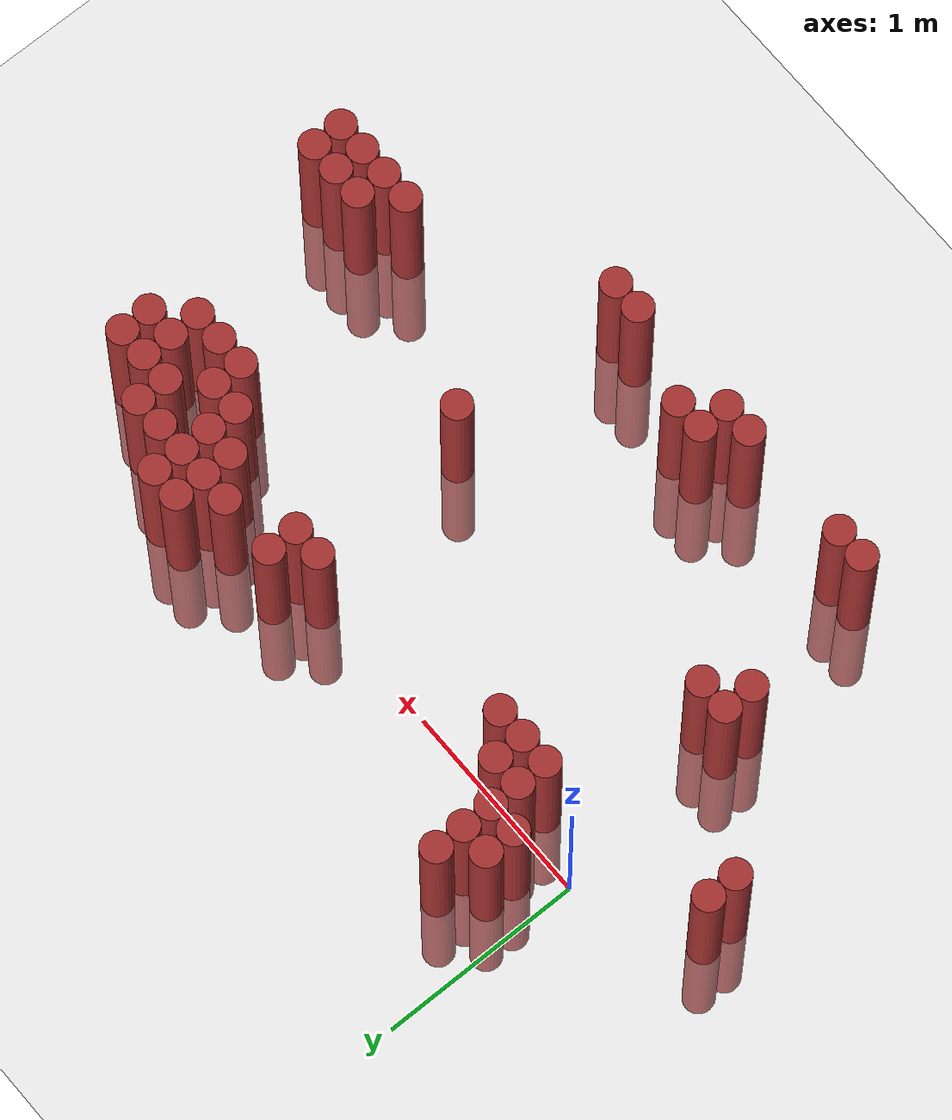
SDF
<sdf version="1.6">
 <world name="default">
  <model name="ground_plane">
   <static>1</static>
   <link name="link">
    <collision name="collision">
     <geometry><plane><normal>0 0 1</normal><size>100 100</size></plane></geometry>
     <surface><friction><ode><mu>100</mu><mu2>50</mu2></ode></friction></surface>
    </collision>
    <visual name="visual">
     <cast_shadows>0</cast_shadows>
     <geometry><plane><normal>0 0 1</normal><size>100 100</size></plane></geometry>
     <material>
      <script><uri>file://media/materials/scripts/gazebo.material</uri><name>Gazebo/Grey</name></script>
     </material>
    </visual>
   </link>
  </model>
  <model name="unit_cylinder_369">
   <static>1</static>
   <pose>-0.575000 -0.425000 0.000000 0.000000 0.000000 0.000000</pose>
   <link name="link">
    <inertial>
     <mass>1</mass>
     <inertia><ixx>0.145833</ixx><ixy>0</ixy><ixz>0</ixz><iyy>0.145833</iyy><iyz>0</iyz><izz>0.125</izz></inertia>
    </inertial>
    <collision name="collision">
     <geometry><cylinder><radius>0.075000</radius><length>1.5</length></cylinder></geometry>
    </collision>
    <visual name="visual">
     <geometry><cylinder><radius>0.075000</radius><length>1.5</length></cylinder></geometry>
     <material>
      <ambient>0.648000 0.192000 0.192000 1</ambient>
      <diffuse>0.648000 0.192000 0.192000 1</diffuse>
     </material>
     <material>
      <script><name>Gazebo/Grey</name><uri>file://media/materials/scripts/gazebo.material</uri></script>
     </material>
    </visual>
   </link>
  </model>
  <model name="unit_cylinder_370">
   <static>1</static>
   <pose>-0.575000 -0.275000 0.000000 0.000000 0.000000 0.000000</pose>
   <link name="link">
    <inertial>
     <mass>1</mass>
     <inertia><ixx>0.145833</ixx><ixy>0</ixy><ixz>0</ixz><iyy>0.145833</iyy><iyz>0</iyz><izz>0.125</izz></inertia>
    </inertial>
    <collision name="collision">
     <geometry><cylinder><radius>0.075000</radius><length>1.5</length></cylinder></geometry>
    </collision>
    <visual name="visual">
     <geometry><cylinder><radius>0.075000</radius><length>1.5</length></cylinder></geometry>
     <material>
      <ambient>0.648000 0.192000 0.192000 1</ambient>
      <diffuse>0.648000 0.192000 0.192000 1</diffuse>
     </material>
     <material>
      <script><name>Gazebo/Grey</name><uri>file://media/materials/scripts/gazebo.material</uri></script>
     </material>
    </visual>
   </link>
  </model>
  <model name="unit_cylinder_371">
   <static>1</static>
   <pose>0.025000 -1.025000 0.000000 0.000000 0.000000 0.000000</pose>
   <link name="link">
    <inertial>
     <mass>1</mass>
     <inertia><ixx>0.145833</ixx><ixy>0</ixy><ixz>0</ixz><iyy>0.145833</iyy><iyz>0</iyz><izz>0.125</izz></inertia>
    </inertial>
    <collision name="collision">
     <geometry><cylinder><radius>0.075000</radius><length>1.5</length></cylinder></geometry>
    </collision>
    <visual name="visual">
     <geometry><cylinder><radius>0.075000</radius><length>1.5</length></cylinder></geometry>
     <material>
      <ambient>0.648000 0.192000 0.192000 1</ambient>
      <diffuse>0.648000 0.192000 0.192000 1</diffuse>
     </material>
     <material>
      <script><name>Gazebo/Grey</name><uri>file://media/materials/scripts/gazebo.material</uri></script>
     </material>
    </visual>
   </link>
  </model>
  <model name="unit_cylinder_372">
   <static>1</static>
   <pose>0.025000 -0.875000 0.000000 0.000000 0.000000 0.000000</pose>
   <link name="link">
    <inertial>
     <mass>1</mass>
     <inertia><ixx>0.145833</ixx><ixy>0</ixy><ixz>0</ixz><iyy>0.145833</iyy><iyz>0</iyz><izz>0.125</izz></inertia>
    </inertial>
    <collision name="collision">
     <geometry><cylinder><radius>0.075000</radius><length>1.5</length></cylinder></geometry>
    </collision>
    <visual name="visual">
     <geometry><cylinder><radius>0.075000</radius><length>1.5</length></cylinder></geometry>
     <material>
      <ambient>0.648000 0.192000 0.192000 1</ambient>
      <diffuse>0.648000 0.192000 0.192000 1</diffuse>
     </material>
     <material>
      <script><name>Gazebo/Grey</name><uri>file://media/materials/scripts/gazebo.material</uri></script>
     </material>
    </visual>
   </link>
  </model>
  <model name="unit_cylinder_374">
   <static>1</static>
   <pose>0.175000 -1.775000 0.000000 0.000000 0.000000 0.000000</pose>
   <link name="link">
    <inertial>
     <mass>1</mass>
     <inertia><ixx>0.145833</ixx><ixy>0</ixy><ixz>0</ixz><iyy>0.145833</iyy><iyz>0</iyz><izz>0.125</izz></inertia>
    </inertial>
    <collision name="collision">
     <geometry><cylinder><radius>0.075000</radius><length>1.5</length></cylinder></geometry>
    </collision>
    <visual name="visual">
     <geometry><cylinder><radius>0.075000</radius><length>1.5</length></cylinder></geometry>
     <material>
      <ambient>0.648000 0.192000 0.192000 1</ambient>
      <diffuse>0.648000 0.192000 0.192000 1</diffuse>
     </material>
     <material>
      <script><name>Gazebo/Grey</name><uri>file://media/materials/scripts/gazebo.material</uri></script>
     </material>
    </visual>
   </link>
  </model>
  <model name="unit_cylinder_375">
   <static>1</static>
   <pose>0.175000 -0.875000 0.000000 0.000000 0.000000 0.000000</pose>
   <link name="link">
    <inertial>
     <mass>1</mass>
     <inertia><ixx>0.145833</ixx><ixy>0</ixy><ixz>0</ixz><iyy>0.145833</iyy><iyz>0</iyz><izz>0.125</izz></inertia>
    </inertial>
    <collision name="collision">
     <geometry><cylinder><radius>0.075000</radius><length>1.5</length></cylinder></geometry>
    </collision>
    <visual name="visual">
     <geometry><cylinder><radius>0.075000</radius><length>1.5</length></cylinder></geometry>
     <material>
      <ambient>0.648000 0.192000 0.192000 1</ambient>
      <diffuse>0.648000 0.192000 0.192000 1</diffuse>
     </material>
     <material>
      <script><name>Gazebo/Grey</name><uri>file://media/materials/scripts/gazebo.material</uri></script>
     </material>
    </visual>
   </link>
  </model>
  <model name="unit_cylinder_376">
   <static>1</static>
   <pose>0.175000 0.175000 0.000000 0.000000 0.000000 0.000000</pose>
   <link name="link">
    <inertial>
     <mass>1</mass>
     <inertia><ixx>0.145833</ixx><ixy>0</ixy><ixz>0</ixz><iyy>0.145833</iyy><iyz>0</iyz><izz>0.125</izz></inertia>
    </inertial>
    <collision name="collision">
     <geometry><cylinder><radius>0.075000</radius><length>1.5</length></cylinder></geometry>
    </collision>
    <visual name="visual">
     <geometry><cylinder><radius>0.075000</radius><length>1.5</length></cylinder></geometry>
     <material>
      <ambient>0.648000 0.192000 0.192000 1</ambient>
      <diffuse>0.648000 0.192000 0.192000 1</diffuse>
     </material>
     <material>
      <script><name>Gazebo/Grey</name><uri>file://media/materials/scripts/gazebo.material</uri></script>
     </material>
    </visual>
   </link>
  </model>
  <model name="unit_cylinder_377">
   <static>1</static>
   <pose>0.175000 0.325000 0.000000 0.000000 0.000000 0.000000</pose>
   <link name="link">
    <inertial>
     <mass>1</mass>
     <inertia><ixx>0.145833</ixx><ixy>0</ixy><ixz>0</ixz><iyy>0.145833</iyy><iyz>0</iyz><izz>0.125</izz></inertia>
    </inertial>
    <collision name="collision">
     <geometry><cylinder><radius>0.075000</radius><length>1.5</length></cylinder></geometry>
    </collision>
    <visual name="visual">
     <geometry><cylinder><radius>0.075000</radius><length>1.5</length></cylinder></geometry>
     <material>
      <ambient>0.648000 0.192000 0.192000 1</ambient>
      <diffuse>0.648000 0.192000 0.192000 1</diffuse>
     </material>
     <material>
      <script><name>Gazebo/Grey</name><uri>file://media/materials/scripts/gazebo.material</uri></script>
     </material>
    </visual>
   </link>
  </model>
  <model name="unit_cylinder_380">
   <static>1</static>
   <pose>0.325000 -1.775000 0.000000 0.000000 0.000000 0.000000</pose>
   <link name="link">
    <inertial>
     <mass>1</mass>
     <inertia><ixx>0.145833</ixx><ixy>0</ixy><ixz>0</ixz><iyy>0.145833</iyy><iyz>0</iyz><izz>0.125</izz></inertia>
    </inertial>
    <collision name="collision">
     <geometry><cylinder><radius>0.075000</radius><length>1.5</length></cylinder></geometry>
    </collision>
    <visual name="visual">
     <geometry><cylinder><radius>0.075000</radius><length>1.5</length></cylinder></geometry>
     <material>
      <ambient>0.648000 0.192000 0.192000 1</ambient>
      <diffuse>0.648000 0.192000 0.192000 1</diffuse>
     </material>
     <material>
      <script><name>Gazebo/Grey</name><uri>file://media/materials/scripts/gazebo.material</uri></script>
     </material>
    </visual>
   </link>
  </model>
  <model name="unit_cylinder_381">
   <static>1</static>
   <pose>0.325000 -0.125000 0.000000 0.000000 0.000000 0.000000</pose>
   <link name="link">
    <inertial>
     <mass>1</mass>
     <inertia><ixx>0.145833</ixx><ixy>0</ixy><ixz>0</ixz><iyy>0.145833</iyy><iyz>0</iyz><izz>0.125</izz></inertia>
    </inertial>
    <collision name="collision">
     <geometry><cylinder><radius>0.075000</radius><length>1.5</length></cylinder></geometry>
    </collision>
    <visual name="visual">
     <geometry><cylinder><radius>0.075000</radius><length>1.5</length></cylinder></geometry>
     <material>
      <ambient>0.648000 0.192000 0.192000 1</ambient>
      <diffuse>0.648000 0.192000 0.192000 1</diffuse>
     </material>
     <material>
      <script><name>Gazebo/Grey</name><uri>file://media/materials/scripts/gazebo.material</uri></script>
     </material>
    </visual>
   </link>
  </model>
  <model name="unit_cylinder_382">
   <static>1</static>
   <pose>0.325000 0.025000 0.000000 0.000000 0.000000 0.000000</pose>
   <link name="link">
    <inertial>
     <mass>1</mass>
     <inertia><ixx>0.145833</ixx><ixy>0</ixy><ixz>0</ixz><iyy>0.145833</iyy><iyz>0</iyz><izz>0.125</izz></inertia>
    </inertial>
    <collision name="collision">
     <geometry><cylinder><radius>0.075000</radius><length>1.5</length></cylinder></geometry>
    </collision>
    <visual name="visual">
     <geometry><cylinder><radius>0.075000</radius><length>1.5</length></cylinder></geometry>
     <material>
      <ambient>0.648000 0.192000 0.192000 1</ambient>
      <diffuse>0.648000 0.192000 0.192000 1</diffuse>
     </material>
     <material>
      <script><name>Gazebo/Grey</name><uri>file://media/materials/scripts/gazebo.material</uri></script>
     </material>
    </visual>
   </link>
  </model>
  <model name="unit_cylinder_383">
   <static>1</static>
   <pose>0.325000 0.175000 0.000000 0.000000 0.000000 0.000000</pose>
   <link name="link">
    <inertial>
     <mass>1</mass>
     <inertia><ixx>0.145833</ixx><ixy>0</ixy><ixz>0</ixz><iyy>0.145833</iyy><iyz>0</iyz><izz>0.125</izz></inertia>
    </inertial>
    <collision name="collision">
     <geometry><cylinder><radius>0.075000</radius><length>1.5</length></cylinder></geometry>
    </collision>
    <visual name="visual">
     <geometry><cylinder><radius>0.075000</radius><length>1.5</length></cylinder></geometry>
     <material>
      <ambient>0.648000 0.192000 0.192000 1</ambient>
      <diffuse>0.648000 0.192000 0.192000 1</diffuse>
     </material>
     <material>
      <script><name>Gazebo/Grey</name><uri>file://media/materials/scripts/gazebo.material</uri></script>
     </material>
    </visual>
   </link>
  </model>
  <model name="unit_cylinder_384">
   <static>1</static>
   <pose>0.325000 0.325000 0.000000 0.000000 0.000000 0.000000</pose>
   <link name="link">
    <inertial>
     <mass>1</mass>
     <inertia><ixx>0.145833</ixx><ixy>0</ixy><ixz>0</ixz><iyy>0.145833</iyy><iyz>0</iyz><izz>0.125</izz></inertia>
    </inertial>
    <collision name="collision">
     <geometry><cylinder><radius>0.075000</radius><length>1.5</length></cylinder></geometry>
    </collision>
    <visual name="visual">
     <geometry><cylinder><radius>0.075000</radius><length>1.5</length></cylinder></geometry>
     <material>
      <ambient>0.648000 0.192000 0.192000 1</ambient>
      <diffuse>0.648000 0.192000 0.192000 1</diffuse>
     </material>
     <material>
      <script><name>Gazebo/Grey</name><uri>file://media/materials/scripts/gazebo.material</uri></script>
     </material>
    </visual>
   </link>
  </model>
  <model name="unit_cylinder_385">
   <static>1</static>
   <pose>0.325000 0.475000 0.000000 0.000000 0.000000 0.000000</pose>
   <link name="link">
    <inertial>
     <mass>1</mass>
     <inertia><ixx>0.145833</ixx><ixy>0</ixy><ixz>0</ixz><iyy>0.145833</iyy><iyz>0</iyz><izz>0.125</izz></inertia>
    </inertial>
    <collision name="collision">
     <geometry><cylinder><radius>0.075000</radius><length>1.5</length></cylinder></geometry>
    </collision>
    <visual name="visual">
     <geometry><cylinder><radius>0.075000</radius><length>1.5</length></cylinder></geometry>
     <material>
      <ambient>0.648000 0.192000 0.192000 1</ambient>
      <diffuse>0.648000 0.192000 0.192000 1</diffuse>
     </material>
     <material>
      <script><name>Gazebo/Grey</name><uri>file://media/materials/scripts/gazebo.material</uri></script>
     </material>
    </visual>
   </link>
  </model>
  <model name="unit_cylinder_390">
   <static>1</static>
   <pose>0.475000 -0.125000 0.000000 0.000000 0.000000 0.000000</pose>
   <link name="link">
    <inertial>
     <mass>1</mass>
     <inertia><ixx>0.145833</ixx><ixy>0</ixy><ixz>0</ixz><iyy>0.145833</iyy><iyz>0</iyz><izz>0.125</izz></inertia>
    </inertial>
    <collision name="collision">
     <geometry><cylinder><radius>0.075000</radius><length>1.5</length></cylinder></geometry>
    </collision>
    <visual name="visual">
     <geometry><cylinder><radius>0.075000</radius><length>1.5</length></cylinder></geometry>
     <material>
      <ambient>0.648000 0.192000 0.192000 1</ambient>
      <diffuse>0.648000 0.192000 0.192000 1</diffuse>
     </material>
     <material>
      <script><name>Gazebo/Grey</name><uri>file://media/materials/scripts/gazebo.material</uri></script>
     </material>
    </visual>
   </link>
  </model>
  <model name="unit_cylinder_391">
   <static>1</static>
   <pose>0.475000 0.025000 0.000000 0.000000 0.000000 0.000000</pose>
   <link name="link">
    <inertial>
     <mass>1</mass>
     <inertia><ixx>0.145833</ixx><ixy>0</ixy><ixz>0</ixz><iyy>0.145833</iyy><iyz>0</iyz><izz>0.125</izz></inertia>
    </inertial>
    <collision name="collision">
     <geometry><cylinder><radius>0.075000</radius><length>1.5</length></cylinder></geometry>
    </collision>
    <visual name="visual">
     <geometry><cylinder><radius>0.075000</radius><length>1.5</length></cylinder></geometry>
     <material>
      <ambient>0.648000 0.192000 0.192000 1</ambient>
      <diffuse>0.648000 0.192000 0.192000 1</diffuse>
     </material>
     <material>
      <script><name>Gazebo/Grey</name><uri>file://media/materials/scripts/gazebo.material</uri></script>
     </material>
    </visual>
   </link>
  </model>
  <model name="unit_cylinder_401">
   <static>1</static>
   <pose>0.625000 -0.125000 0.000000 0.000000 0.000000 0.000000</pose>
   <link name="link">
    <inertial>
     <mass>1</mass>
     <inertia><ixx>0.145833</ixx><ixy>0</ixy><ixz>0</ixz><iyy>0.145833</iyy><iyz>0</iyz><izz>0.125</izz></inertia>
    </inertial>
    <collision name="collision">
     <geometry><cylinder><radius>0.075000</radius><length>1.5</length></cylinder></geometry>
    </collision>
    <visual name="visual">
     <geometry><cylinder><radius>0.075000</radius><length>1.5</length></cylinder></geometry>
     <material>
      <ambient>0.648000 0.192000 0.192000 1</ambient>
      <diffuse>0.648000 0.192000 0.192000 1</diffuse>
     </material>
     <material>
      <script><name>Gazebo/Grey</name><uri>file://media/materials/scripts/gazebo.material</uri></script>
     </material>
    </visual>
   </link>
  </model>
  <model name="unit_cylinder_409">
   <static>1</static>
   <pose>0.925000 -1.775000 0.000000 0.000000 0.000000 0.000000</pose>
   <link name="link">
    <inertial>
     <mass>1</mass>
     <inertia><ixx>0.145833</ixx><ixy>0</ixy><ixz>0</ixz><iyy>0.145833</iyy><iyz>0</iyz><izz>0.125</izz></inertia>
    </inertial>
    <collision name="collision">
     <geometry><cylinder><radius>0.075000</radius><length>1.5</length></cylinder></geometry>
    </collision>
    <visual name="visual">
     <geometry><cylinder><radius>0.075000</radius><length>1.5</length></cylinder></geometry>
     <material>
      <ambient>0.648000 0.192000 0.192000 1</ambient>
      <diffuse>0.648000 0.192000 0.192000 1</diffuse>
     </material>
     <material>
      <script><name>Gazebo/Grey</name><uri>file://media/materials/scripts/gazebo.material</uri></script>
     </material>
    </visual>
   </link>
  </model>
  <model name="unit_cylinder_410">
   <static>1</static>
   <pose>1.075000 -1.775000 0.000000 0.000000 0.000000 0.000000</pose>
   <link name="link">
    <inertial>
     <mass>1</mass>
     <inertia><ixx>0.145833</ixx><ixy>0</ixy><ixz>0</ixz><iyy>0.145833</iyy><iyz>0</iyz><izz>0.125</izz></inertia>
    </inertial>
    <collision name="collision">
     <geometry><cylinder><radius>0.075000</radius><length>1.5</length></cylinder></geometry>
    </collision>
    <visual name="visual">
     <geometry><cylinder><radius>0.075000</radius><length>1.5</length></cylinder></geometry>
     <material>
      <ambient>0.648000 0.192000 0.192000 1</ambient>
      <diffuse>0.648000 0.192000 0.192000 1</diffuse>
     </material>
     <material>
      <script><name>Gazebo/Grey</name><uri>file://media/materials/scripts/gazebo.material</uri></script>
     </material>
    </visual>
   </link>
  </model>
  <model name="unit_cylinder_411">
   <static>1</static>
   <pose>1.075000 -1.625000 0.000000 0.000000 0.000000 0.000000</pose>
   <link name="link">
    <inertial>
     <mass>1</mass>
     <inertia><ixx>0.145833</ixx><ixy>0</ixy><ixz>0</ixz><iyy>0.145833</iyy><iyz>0</iyz><izz>0.125</izz></inertia>
    </inertial>
    <collision name="collision">
     <geometry><cylinder><radius>0.075000</radius><length>1.5</length></cylinder></geometry>
    </collision>
    <visual name="visual">
     <geometry><cylinder><radius>0.075000</radius><length>1.5</length></cylinder></geometry>
     <material>
      <ambient>0.648000 0.192000 0.192000 1</ambient>
      <diffuse>0.648000 0.192000 0.192000 1</diffuse>
     </material>
     <material>
      <script><name>Gazebo/Grey</name><uri>file://media/materials/scripts/gazebo.material</uri></script>
     </material>
    </visual>
   </link>
  </model>
  <model name="unit_cylinder_415">
   <static>1</static>
   <pose>1.225000 -1.625000 0.000000 0.000000 0.000000 0.000000</pose>
   <link name="link">
    <inertial>
     <mass>1</mass>
     <inertia><ixx>0.145833</ixx><ixy>0</ixy><ixz>0</ixz><iyy>0.145833</iyy><iyz>0</iyz><izz>0.125</izz></inertia>
    </inertial>
    <collision name="collision">
     <geometry><cylinder><radius>0.075000</radius><length>1.5</length></cylinder></geometry>
    </collision>
    <visual name="visual">
     <geometry><cylinder><radius>0.075000</radius><length>1.5</length></cylinder></geometry>
     <material>
      <ambient>0.648000 0.192000 0.192000 1</ambient>
      <diffuse>0.648000 0.192000 0.192000 1</diffuse>
     </material>
     <material>
      <script><name>Gazebo/Grey</name><uri>file://media/materials/scripts/gazebo.material</uri></script>
     </material>
    </visual>
   </link>
  </model>
  <model name="unit_cylinder_429">
   <static>1</static>
   <pose>1.675000 -1.775000 0.000000 0.000000 0.000000 0.000000</pose>
   <link name="link">
    <inertial>
     <mass>1</mass>
     <inertia><ixx>0.145833</ixx><ixy>0</ixy><ixz>0</ixz><iyy>0.145833</iyy><iyz>0</iyz><izz>0.125</izz></inertia>
    </inertial>
    <collision name="collision">
     <geometry><cylinder><radius>0.075000</radius><length>1.5</length></cylinder></geometry>
    </collision>
    <visual name="visual">
     <geometry><cylinder><radius>0.075000</radius><length>1.5</length></cylinder></geometry>
     <material>
      <ambient>0.648000 0.192000 0.192000 1</ambient>
      <diffuse>0.648000 0.192000 0.192000 1</diffuse>
     </material>
     <material>
      <script><name>Gazebo/Grey</name><uri>file://media/materials/scripts/gazebo.material</uri></script>
     </material>
    </visual>
   </link>
  </model>
  <model name="unit_cylinder_430">
   <static>1</static>
   <pose>1.675000 0.025000 0.000000 0.000000 0.000000 0.000000</pose>
   <link name="link">
    <inertial>
     <mass>1</mass>
     <inertia><ixx>0.145833</ixx><ixy>0</ixy><ixz>0</ixz><iyy>0.145833</iyy><iyz>0</iyz><izz>0.125</izz></inertia>
    </inertial>
    <collision name="collision">
     <geometry><cylinder><radius>0.075000</radius><length>1.5</length></cylinder></geometry>
    </collision>
    <visual name="visual">
     <geometry><cylinder><radius>0.075000</radius><length>1.5</length></cylinder></geometry>
     <material>
      <ambient>0.648000 0.192000 0.192000 1</ambient>
      <diffuse>0.648000 0.192000 0.192000 1</diffuse>
     </material>
     <material>
      <script><name>Gazebo/Grey</name><uri>file://media/materials/scripts/gazebo.material</uri></script>
     </material>
    </visual>
   </link>
  </model>
  <model name="unit_cylinder_433">
   <static>1</static>
   <pose>1.825000 -1.775000 0.000000 0.000000 0.000000 0.000000</pose>
   <link name="link">
    <inertial>
     <mass>1</mass>
     <inertia><ixx>0.145833</ixx><ixy>0</ixy><ixz>0</ixz><iyy>0.145833</iyy><iyz>0</iyz><izz>0.125</izz></inertia>
    </inertial>
    <collision name="collision">
     <geometry><cylinder><radius>0.075000</radius><length>1.5</length></cylinder></geometry>
    </collision>
    <visual name="visual">
     <geometry><cylinder><radius>0.075000</radius><length>1.5</length></cylinder></geometry>
     <material>
      <ambient>0.648000 0.192000 0.192000 1</ambient>
      <diffuse>0.648000 0.192000 0.192000 1</diffuse>
     </material>
     <material>
      <script><name>Gazebo/Grey</name><uri>file://media/materials/scripts/gazebo.material</uri></script>
     </material>
    </visual>
   </link>
  </model>
  <model name="unit_cylinder_434">
   <static>1</static>
   <pose>1.825000 -0.875000 0.000000 0.000000 0.000000 0.000000</pose>
   <link name="link">
    <inertial>
     <mass>1</mass>
     <inertia><ixx>0.145833</ixx><ixy>0</ixy><ixz>0</ixz><iyy>0.145833</iyy><iyz>0</iyz><izz>0.125</izz></inertia>
    </inertial>
    <collision name="collision">
     <geometry><cylinder><radius>0.075000</radius><length>1.5</length></cylinder></geometry>
    </collision>
    <visual name="visual">
     <geometry><cylinder><radius>0.075000</radius><length>1.5</length></cylinder></geometry>
     <material>
      <ambient>0.648000 0.192000 0.192000 1</ambient>
      <diffuse>0.648000 0.192000 0.192000 1</diffuse>
     </material>
     <material>
      <script><name>Gazebo/Grey</name><uri>file://media/materials/scripts/gazebo.material</uri></script>
     </material>
    </visual>
   </link>
  </model>
  <model name="unit_cylinder_435">
   <static>1</static>
   <pose>1.825000 0.025000 0.000000 0.000000 0.000000 0.000000</pose>
   <link name="link">
    <inertial>
     <mass>1</mass>
     <inertia><ixx>0.145833</ixx><ixy>0</ixy><ixz>0</ixz><iyy>0.145833</iyy><iyz>0</iyz><izz>0.125</izz></inertia>
    </inertial>
    <collision name="collision">
     <geometry><cylinder><radius>0.075000</radius><length>1.5</length></cylinder></geometry>
    </collision>
    <visual name="visual">
     <geometry><cylinder><radius>0.075000</radius><length>1.5</length></cylinder></geometry>
     <material>
      <ambient>0.648000 0.192000 0.192000 1</ambient>
      <diffuse>0.648000 0.192000 0.192000 1</diffuse>
     </material>
     <material>
      <script><name>Gazebo/Grey</name><uri>file://media/materials/scripts/gazebo.material</uri></script>
     </material>
    </visual>
   </link>
  </model>
  <model name="unit_cylinder_436">
   <static>1</static>
   <pose>1.825000 0.175000 0.000000 0.000000 0.000000 0.000000</pose>
   <link name="link">
    <inertial>
     <mass>1</mass>
     <inertia><ixx>0.145833</ixx><ixy>0</ixy><ixz>0</ixz><iyy>0.145833</iyy><iyz>0</iyz><izz>0.125</izz></inertia>
    </inertial>
    <collision name="collision">
     <geometry><cylinder><radius>0.075000</radius><length>1.5</length></cylinder></geometry>
    </collision>
    <visual name="visual">
     <geometry><cylinder><radius>0.075000</radius><length>1.5</length></cylinder></geometry>
     <material>
      <ambient>0.648000 0.192000 0.192000 1</ambient>
      <diffuse>0.648000 0.192000 0.192000 1</diffuse>
     </material>
     <material>
      <script><name>Gazebo/Grey</name><uri>file://media/materials/scripts/gazebo.material</uri></script>
     </material>
    </visual>
   </link>
  </model>
  <model name="unit_cylinder_437">
   <static>1</static>
   <pose>2.125000 0.175000 0.000000 0.000000 0.000000 0.000000</pose>
   <link name="link">
    <inertial>
     <mass>1</mass>
     <inertia><ixx>0.145833</ixx><ixy>0</ixy><ixz>0</ixz><iyy>0.145833</iyy><iyz>0</iyz><izz>0.125</izz></inertia>
    </inertial>
    <collision name="collision">
     <geometry><cylinder><radius>0.075000</radius><length>1.5</length></cylinder></geometry>
    </collision>
    <visual name="visual">
     <geometry><cylinder><radius>0.075000</radius><length>1.5</length></cylinder></geometry>
     <material>
      <ambient>0.648000 0.192000 0.192000 1</ambient>
      <diffuse>0.648000 0.192000 0.192000 1</diffuse>
     </material>
     <material>
      <script><name>Gazebo/Grey</name><uri>file://media/materials/scripts/gazebo.material</uri></script>
     </material>
    </visual>
   </link>
  </model>
  <model name="unit_cylinder_440">
   <static>1</static>
   <pose>2.275000 0.025000 0.000000 0.000000 0.000000 0.000000</pose>
   <link name="link">
    <inertial>
     <mass>1</mass>
     <inertia><ixx>0.145833</ixx><ixy>0</ixy><ixz>0</ixz><iyy>0.145833</iyy><iyz>0</iyz><izz>0.125</izz></inertia>
    </inertial>
    <collision name="collision">
     <geometry><cylinder><radius>0.075000</radius><length>1.5</length></cylinder></geometry>
    </collision>
    <visual name="visual">
     <geometry><cylinder><radius>0.075000</radius><length>1.5</length></cylinder></geometry>
     <material>
      <ambient>0.648000 0.192000 0.192000 1</ambient>
      <diffuse>0.648000 0.192000 0.192000 1</diffuse>
     </material>
     <material>
      <script><name>Gazebo/Grey</name><uri>file://media/materials/scripts/gazebo.material</uri></script>
     </material>
    </visual>
   </link>
  </model>
  <model name="unit_cylinder_441">
   <static>1</static>
   <pose>2.275000 0.175000 0.000000 0.000000 0.000000 0.000000</pose>
   <link name="link">
    <inertial>
     <mass>1</mass>
     <inertia><ixx>0.145833</ixx><ixy>0</ixy><ixz>0</ixz><iyy>0.145833</iyy><iyz>0</iyz><izz>0.125</izz></inertia>
    </inertial>
    <collision name="collision">
     <geometry><cylinder><radius>0.075000</radius><length>1.5</length></cylinder></geometry>
    </collision>
    <visual name="visual">
     <geometry><cylinder><radius>0.075000</radius><length>1.5</length></cylinder></geometry>
     <material>
      <ambient>0.648000 0.192000 0.192000 1</ambient>
      <diffuse>0.648000 0.192000 0.192000 1</diffuse>
     </material>
     <material>
      <script><name>Gazebo/Grey</name><uri>file://media/materials/scripts/gazebo.material</uri></script>
     </material>
    </visual>
   </link>
  </model>
  <model name="unit_cylinder_442">
   <static>1</static>
   <pose>2.275000 0.325000 0.000000 0.000000 0.000000 0.000000</pose>
   <link name="link">
    <inertial>
     <mass>1</mass>
     <inertia><ixx>0.145833</ixx><ixy>0</ixy><ixz>0</ixz><iyy>0.145833</iyy><iyz>0</iyz><izz>0.125</izz></inertia>
    </inertial>
    <collision name="collision">
     <geometry><cylinder><radius>0.075000</radius><length>1.5</length></cylinder></geometry>
    </collision>
    <visual name="visual">
     <geometry><cylinder><radius>0.075000</radius><length>1.5</length></cylinder></geometry>
     <material>
      <ambient>0.648000 0.192000 0.192000 1</ambient>
      <diffuse>0.648000 0.192000 0.192000 1</diffuse>
     </material>
     <material>
      <script><name>Gazebo/Grey</name><uri>file://media/materials/scripts/gazebo.material</uri></script>
     </material>
    </visual>
   </link>
  </model>
  <model name="unit_cylinder_449">
   <static>1</static>
   <pose>2.425000 -0.125000 0.000000 0.000000 0.000000 0.000000</pose>
   <link name="link">
    <inertial>
     <mass>1</mass>
     <inertia><ixx>0.145833</ixx><ixy>0</ixy><ixz>0</ixz><iyy>0.145833</iyy><iyz>0</iyz><izz>0.125</izz></inertia>
    </inertial>
    <collision name="collision">
     <geometry><cylinder><radius>0.075000</radius><length>1.5</length></cylinder></geometry>
    </collision>
    <visual name="visual">
     <geometry><cylinder><radius>0.075000</radius><length>1.5</length></cylinder></geometry>
     <material>
      <ambient>0.648000 0.192000 0.192000 1</ambient>
      <diffuse>0.648000 0.192000 0.192000 1</diffuse>
     </material>
     <material>
      <script><name>Gazebo/Grey</name><uri>file://media/materials/scripts/gazebo.material</uri></script>
     </material>
    </visual>
   </link>
  </model>
  <model name="unit_cylinder_450">
   <static>1</static>
   <pose>2.425000 0.025000 0.000000 0.000000 0.000000 0.000000</pose>
   <link name="link">
    <inertial>
     <mass>1</mass>
     <inertia><ixx>0.145833</ixx><ixy>0</ixy><ixz>0</ixz><iyy>0.145833</iyy><iyz>0</iyz><izz>0.125</izz></inertia>
    </inertial>
    <collision name="collision">
     <geometry><cylinder><radius>0.075000</radius><length>1.5</length></cylinder></geometry>
    </collision>
    <visual name="visual">
     <geometry><cylinder><radius>0.075000</radius><length>1.5</length></cylinder></geometry>
     <material>
      <ambient>0.648000 0.192000 0.192000 1</ambient>
      <diffuse>0.648000 0.192000 0.192000 1</diffuse>
     </material>
     <material>
      <script><name>Gazebo/Grey</name><uri>file://media/materials/scripts/gazebo.material</uri></script>
     </material>
    </visual>
   </link>
  </model>
  <model name="unit_cylinder_451">
   <static>1</static>
   <pose>2.425000 0.175000 0.000000 0.000000 0.000000 0.000000</pose>
   <link name="link">
    <inertial>
     <mass>1</mass>
     <inertia><ixx>0.145833</ixx><ixy>0</ixy><ixz>0</ixz><iyy>0.145833</iyy><iyz>0</iyz><izz>0.125</izz></inertia>
    </inertial>
    <collision name="collision">
     <geometry><cylinder><radius>0.075000</radius><length>1.5</length></cylinder></geometry>
    </collision>
    <visual name="visual">
     <geometry><cylinder><radius>0.075000</radius><length>1.5</length></cylinder></geometry>
     <material>
      <ambient>0.648000 0.192000 0.192000 1</ambient>
      <diffuse>0.648000 0.192000 0.192000 1</diffuse>
     </material>
     <material>
      <script><name>Gazebo/Grey</name><uri>file://media/materials/scripts/gazebo.material</uri></script>
     </material>
    </visual>
   </link>
  </model>
  <model name="unit_cylinder_452">
   <static>1</static>
   <pose>2.425000 0.325000 0.000000 0.000000 0.000000 0.000000</pose>
   <link name="link">
    <inertial>
     <mass>1</mass>
     <inertia><ixx>0.145833</ixx><ixy>0</ixy><ixz>0</ixz><iyy>0.145833</iyy><iyz>0</iyz><izz>0.125</izz></inertia>
    </inertial>
    <collision name="collision">
     <geometry><cylinder><radius>0.075000</radius><length>1.5</length></cylinder></geometry>
    </collision>
    <visual name="visual">
     <geometry><cylinder><radius>0.075000</radius><length>1.5</length></cylinder></geometry>
     <material>
      <ambient>0.648000 0.192000 0.192000 1</ambient>
      <diffuse>0.648000 0.192000 0.192000 1</diffuse>
     </material>
     <material>
      <script><name>Gazebo/Grey</name><uri>file://media/materials/scripts/gazebo.material</uri></script>
     </material>
    </visual>
   </link>
  </model>
  <model name="unit_cylinder_457">
   <static>1</static>
   <pose>2.575000 -0.275000 0.000000 0.000000 0.000000 0.000000</pose>
   <link name="link">
    <inertial>
     <mass>1</mass>
     <inertia><ixx>0.145833</ixx><ixy>0</ixy><ixz>0</ixz><iyy>0.145833</iyy><iyz>0</iyz><izz>0.125</izz></inertia>
    </inertial>
    <collision name="collision">
     <geometry><cylinder><radius>0.075000</radius><length>1.5</length></cylinder></geometry>
    </collision>
    <visual name="visual">
     <geometry><cylinder><radius>0.075000</radius><length>1.5</length></cylinder></geometry>
     <material>
      <ambient>0.648000 0.192000 0.192000 1</ambient>
      <diffuse>0.648000 0.192000 0.192000 1</diffuse>
     </material>
     <material>
      <script><name>Gazebo/Grey</name><uri>file://media/materials/scripts/gazebo.material</uri></script>
     </material>
    </visual>
   </link>
  </model>
  <model name="unit_cylinder_458">
   <static>1</static>
   <pose>2.575000 -0.125000 0.000000 0.000000 0.000000 0.000000</pose>
   <link name="link">
    <inertial>
     <mass>1</mass>
     <inertia><ixx>0.145833</ixx><ixy>0</ixy><ixz>0</ixz><iyy>0.145833</iyy><iyz>0</iyz><izz>0.125</izz></inertia>
    </inertial>
    <collision name="collision">
     <geometry><cylinder><radius>0.075000</radius><length>1.5</length></cylinder></geometry>
    </collision>
    <visual name="visual">
     <geometry><cylinder><radius>0.075000</radius><length>1.5</length></cylinder></geometry>
     <material>
      <ambient>0.648000 0.192000 0.192000 1</ambient>
      <diffuse>0.648000 0.192000 0.192000 1</diffuse>
     </material>
     <material>
      <script><name>Gazebo/Grey</name><uri>file://media/materials/scripts/gazebo.material</uri></script>
     </material>
    </visual>
   </link>
  </model>
  <model name="unit_cylinder_459">
   <static>1</static>
   <pose>2.575000 0.175000 0.000000 0.000000 0.000000 0.000000</pose>
   <link name="link">
    <inertial>
     <mass>1</mass>
     <inertia><ixx>0.145833</ixx><ixy>0</ixy><ixz>0</ixz><iyy>0.145833</iyy><iyz>0</iyz><izz>0.125</izz></inertia>
    </inertial>
    <collision name="collision">
     <geometry><cylinder><radius>0.075000</radius><length>1.5</length></cylinder></geometry>
    </collision>
    <visual name="visual">
     <geometry><cylinder><radius>0.075000</radius><length>1.5</length></cylinder></geometry>
     <material>
      <ambient>0.648000 0.192000 0.192000 1</ambient>
      <diffuse>0.648000 0.192000 0.192000 1</diffuse>
     </material>
     <material>
      <script><name>Gazebo/Grey</name><uri>file://media/materials/scripts/gazebo.material</uri></script>
     </material>
    </visual>
   </link>
  </model>
  <model name="unit_cylinder_462">
   <static>1</static>
   <pose>2.725000 -1.325000 0.000000 0.000000 0.000000 0.000000</pose>
   <link name="link">
    <inertial>
     <mass>1</mass>
     <inertia><ixx>0.145833</ixx><ixy>0</ixy><ixz>0</ixz><iyy>0.145833</iyy><iyz>0</iyz><izz>0.125</izz></inertia>
    </inertial>
    <collision name="collision">
     <geometry><cylinder><radius>0.075000</radius><length>1.5</length></cylinder></geometry>
    </collision>
    <visual name="visual">
     <geometry><cylinder><radius>0.075000</radius><length>1.5</length></cylinder></geometry>
     <material>
      <ambient>0.648000 0.192000 0.192000 1</ambient>
      <diffuse>0.648000 0.192000 0.192000 1</diffuse>
     </material>
     <material>
      <script><name>Gazebo/Grey</name><uri>file://media/materials/scripts/gazebo.material</uri></script>
     </material>
    </visual>
   </link>
  </model>
  <model name="unit_cylinder_463">
   <static>1</static>
   <pose>2.725000 -0.275000 0.000000 0.000000 0.000000 0.000000</pose>
   <link name="link">
    <inertial>
     <mass>1</mass>
     <inertia><ixx>0.145833</ixx><ixy>0</ixy><ixz>0</ixz><iyy>0.145833</iyy><iyz>0</iyz><izz>0.125</izz></inertia>
    </inertial>
    <collision name="collision">
     <geometry><cylinder><radius>0.075000</radius><length>1.5</length></cylinder></geometry>
    </collision>
    <visual name="visual">
     <geometry><cylinder><radius>0.075000</radius><length>1.5</length></cylinder></geometry>
     <material>
      <ambient>0.648000 0.192000 0.192000 1</ambient>
      <diffuse>0.648000 0.192000 0.192000 1</diffuse>
     </material>
     <material>
      <script><name>Gazebo/Grey</name><uri>file://media/materials/scripts/gazebo.material</uri></script>
     </material>
    </visual>
   </link>
  </model>
  <model name="unit_cylinder_464">
   <static>1</static>
   <pose>2.725000 0.025000 0.000000 0.000000 0.000000 0.000000</pose>
   <link name="link">
    <inertial>
     <mass>1</mass>
     <inertia><ixx>0.145833</ixx><ixy>0</ixy><ixz>0</ixz><iyy>0.145833</iyy><iyz>0</iyz><izz>0.125</izz></inertia>
    </inertial>
    <collision name="collision">
     <geometry><cylinder><radius>0.075000</radius><length>1.5</length></cylinder></geometry>
    </collision>
    <visual name="visual">
     <geometry><cylinder><radius>0.075000</radius><length>1.5</length></cylinder></geometry>
     <material>
      <ambient>0.648000 0.192000 0.192000 1</ambient>
      <diffuse>0.648000 0.192000 0.192000 1</diffuse>
     </material>
     <material>
      <script><name>Gazebo/Grey</name><uri>file://media/materials/scripts/gazebo.material</uri></script>
     </material>
    </visual>
   </link>
  </model>
  <model name="unit_cylinder_465">
   <static>1</static>
   <pose>2.725000 0.175000 0.000000 0.000000 0.000000 0.000000</pose>
   <link name="link">
    <inertial>
     <mass>1</mass>
     <inertia><ixx>0.145833</ixx><ixy>0</ixy><ixz>0</ixz><iyy>0.145833</iyy><iyz>0</iyz><izz>0.125</izz></inertia>
    </inertial>
    <collision name="collision">
     <geometry><cylinder><radius>0.075000</radius><length>1.5</length></cylinder></geometry>
    </collision>
    <visual name="visual">
     <geometry><cylinder><radius>0.075000</radius><length>1.5</length></cylinder></geometry>
     <material>
      <ambient>0.648000 0.192000 0.192000 1</ambient>
      <diffuse>0.648000 0.192000 0.192000 1</diffuse>
     </material>
     <material>
      <script><name>Gazebo/Grey</name><uri>file://media/materials/scripts/gazebo.material</uri></script>
     </material>
    </visual>
   </link>
  </model>
  <model name="unit_cylinder_466">
   <static>1</static>
   <pose>2.875000 -1.325000 0.000000 0.000000 0.000000 0.000000</pose>
   <link name="link">
    <inertial>
     <mass>1</mass>
     <inertia><ixx>0.145833</ixx><ixy>0</ixy><ixz>0</ixz><iyy>0.145833</iyy><iyz>0</iyz><izz>0.125</izz></inertia>
    </inertial>
    <collision name="collision">
     <geometry><cylinder><radius>0.075000</radius><length>1.5</length></cylinder></geometry>
    </collision>
    <visual name="visual">
     <geometry><cylinder><radius>0.075000</radius><length>1.5</length></cylinder></geometry>
     <material>
      <ambient>0.648000 0.192000 0.192000 1</ambient>
      <diffuse>0.648000 0.192000 0.192000 1</diffuse>
     </material>
     <material>
      <script><name>Gazebo/Grey</name><uri>file://media/materials/scripts/gazebo.material</uri></script>
     </material>
    </visual>
   </link>
  </model>
  <model name="unit_cylinder_467">
   <static>1</static>
   <pose>2.875000 -1.175000 0.000000 0.000000 0.000000 0.000000</pose>
   <link name="link">
    <inertial>
     <mass>1</mass>
     <inertia><ixx>0.145833</ixx><ixy>0</ixy><ixz>0</ixz><iyy>0.145833</iyy><iyz>0</iyz><izz>0.125</izz></inertia>
    </inertial>
    <collision name="collision">
     <geometry><cylinder><radius>0.075000</radius><length>1.5</length></cylinder></geometry>
    </collision>
    <visual name="visual">
     <geometry><cylinder><radius>0.075000</radius><length>1.5</length></cylinder></geometry>
     <material>
      <ambient>0.648000 0.192000 0.192000 1</ambient>
      <diffuse>0.648000 0.192000 0.192000 1</diffuse>
     </material>
     <material>
      <script><name>Gazebo/Grey</name><uri>file://media/materials/scripts/gazebo.material</uri></script>
     </material>
    </visual>
   </link>
  </model>
  <model name="unit_cylinder_468">
   <static>1</static>
   <pose>2.875000 -0.275000 0.000000 0.000000 0.000000 0.000000</pose>
   <link name="link">
    <inertial>
     <mass>1</mass>
     <inertia><ixx>0.145833</ixx><ixy>0</ixy><ixz>0</ixz><iyy>0.145833</iyy><iyz>0</iyz><izz>0.125</izz></inertia>
    </inertial>
    <collision name="collision">
     <geometry><cylinder><radius>0.075000</radius><length>1.5</length></cylinder></geometry>
    </collision>
    <visual name="visual">
     <geometry><cylinder><radius>0.075000</radius><length>1.5</length></cylinder></geometry>
     <material>
      <ambient>0.648000 0.192000 0.192000 1</ambient>
      <diffuse>0.648000 0.192000 0.192000 1</diffuse>
     </material>
     <material>
      <script><name>Gazebo/Grey</name><uri>file://media/materials/scripts/gazebo.material</uri></script>
     </material>
    </visual>
   </link>
  </model>
  <model name="unit_cylinder_469">
   <static>1</static>
   <pose>2.875000 -0.125000 0.000000 0.000000 0.000000 0.000000</pose>
   <link name="link">
    <inertial>
     <mass>1</mass>
     <inertia><ixx>0.145833</ixx><ixy>0</ixy><ixz>0</ixz><iyy>0.145833</iyy><iyz>0</iyz><izz>0.125</izz></inertia>
    </inertial>
    <collision name="collision">
     <geometry><cylinder><radius>0.075000</radius><length>1.5</length></cylinder></geometry>
    </collision>
    <visual name="visual">
     <geometry><cylinder><radius>0.075000</radius><length>1.5</length></cylinder></geometry>
     <material>
      <ambient>0.648000 0.192000 0.192000 1</ambient>
      <diffuse>0.648000 0.192000 0.192000 1</diffuse>
     </material>
     <material>
      <script><name>Gazebo/Grey</name><uri>file://media/materials/scripts/gazebo.material</uri></script>
     </material>
    </visual>
   </link>
  </model>
  <model name="unit_cylinder_470">
   <static>1</static>
   <pose>2.875000 0.025000 0.000000 0.000000 0.000000 0.000000</pose>
   <link name="link">
    <inertial>
     <mass>1</mass>
     <inertia><ixx>0.145833</ixx><ixy>0</ixy><ixz>0</ixz><iyy>0.145833</iyy><iyz>0</iyz><izz>0.125</izz></inertia>
    </inertial>
    <collision name="collision">
     <geometry><cylinder><radius>0.075000</radius><length>1.5</length></cylinder></geometry>
    </collision>
    <visual name="visual">
     <geometry><cylinder><radius>0.075000</radius><length>1.5</length></cylinder></geometry>
     <material>
      <ambient>0.648000 0.192000 0.192000 1</ambient>
      <diffuse>0.648000 0.192000 0.192000 1</diffuse>
     </material>
     <material>
      <script><name>Gazebo/Grey</name><uri>file://media/materials/scripts/gazebo.material</uri></script>
     </material>
    </visual>
   </link>
  </model>
  <model name="unit_cylinder_471">
   <static>1</static>
   <pose>3.025000 -1.325000 0.000000 0.000000 0.000000 0.000000</pose>
   <link name="link">
    <inertial>
     <mass>1</mass>
     <inertia><ixx>0.145833</ixx><ixy>0</ixy><ixz>0</ixz><iyy>0.145833</iyy><iyz>0</iyz><izz>0.125</izz></inertia>
    </inertial>
    <collision name="collision">
     <geometry><cylinder><radius>0.075000</radius><length>1.5</length></cylinder></geometry>
    </collision>
    <visual name="visual">
     <geometry><cylinder><radius>0.075000</radius><length>1.5</length></cylinder></geometry>
     <material>
      <ambient>0.648000 0.192000 0.192000 1</ambient>
      <diffuse>0.648000 0.192000 0.192000 1</diffuse>
     </material>
     <material>
      <script><name>Gazebo/Grey</name><uri>file://media/materials/scripts/gazebo.material</uri></script>
     </material>
    </visual>
   </link>
  </model>
  <model name="unit_cylinder_472">
   <static>1</static>
   <pose>3.025000 -1.175000 0.000000 0.000000 0.000000 0.000000</pose>
   <link name="link">
    <inertial>
     <mass>1</mass>
     <inertia><ixx>0.145833</ixx><ixy>0</ixy><ixz>0</ixz><iyy>0.145833</iyy><iyz>0</iyz><izz>0.125</izz></inertia>
    </inertial>
    <collision name="collision">
     <geometry><cylinder><radius>0.075000</radius><length>1.5</length></cylinder></geometry>
    </collision>
    <visual name="visual">
     <geometry><cylinder><radius>0.075000</radius><length>1.5</length></cylinder></geometry>
     <material>
      <ambient>0.648000 0.192000 0.192000 1</ambient>
      <diffuse>0.648000 0.192000 0.192000 1</diffuse>
     </material>
     <material>
      <script><name>Gazebo/Grey</name><uri>file://media/materials/scripts/gazebo.material</uri></script>
     </material>
    </visual>
   </link>
  </model>
  <model name="unit_cylinder_473">
   <static>1</static>
   <pose>3.025000 -0.125000 0.000000 0.000000 0.000000 0.000000</pose>
   <link name="link">
    <inertial>
     <mass>1</mass>
     <inertia><ixx>0.145833</ixx><ixy>0</ixy><ixz>0</ixz><iyy>0.145833</iyy><iyz>0</iyz><izz>0.125</izz></inertia>
    </inertial>
    <collision name="collision">
     <geometry><cylinder><radius>0.075000</radius><length>1.5</length></cylinder></geometry>
    </collision>
    <visual name="visual">
     <geometry><cylinder><radius>0.075000</radius><length>1.5</length></cylinder></geometry>
     <material>
      <ambient>0.648000 0.192000 0.192000 1</ambient>
      <diffuse>0.648000 0.192000 0.192000 1</diffuse>
     </material>
     <material>
      <script><name>Gazebo/Grey</name><uri>file://media/materials/scripts/gazebo.material</uri></script>
     </material>
    </visual>
   </link>
  </model>
  <model name="unit_cylinder_474">
   <static>1</static>
   <pose>3.025000 0.025000 0.000000 0.000000 0.000000 0.000000</pose>
   <link name="link">
    <inertial>
     <mass>1</mass>
     <inertia><ixx>0.145833</ixx><ixy>0</ixy><ixz>0</ixz><iyy>0.145833</iyy><iyz>0</iyz><izz>0.125</izz></inertia>
    </inertial>
    <collision name="collision">
     <geometry><cylinder><radius>0.075000</radius><length>1.5</length></cylinder></geometry>
    </collision>
    <visual name="visual">
     <geometry><cylinder><radius>0.075000</radius><length>1.5</length></cylinder></geometry>
     <material>
      <ambient>0.648000 0.192000 0.192000 1</ambient>
      <diffuse>0.648000 0.192000 0.192000 1</diffuse>
     </material>
     <material>
      <script><name>Gazebo/Grey</name><uri>file://media/materials/scripts/gazebo.material</uri></script>
     </material>
    </visual>
   </link>
  </model>
  <model name="unit_cylinder_476">
   <static>1</static>
   <pose>3.175000 -1.325000 0.000000 0.000000 0.000000 0.000000</pose>
   <link name="link">
    <inertial>
     <mass>1</mass>
     <inertia><ixx>0.145833</ixx><ixy>0</ixy><ixz>0</ixz><iyy>0.145833</iyy><iyz>0</iyz><izz>0.125</izz></inertia>
    </inertial>
    <collision name="collision">
     <geometry><cylinder><radius>0.075000</radius><length>1.5</length></cylinder></geometry>
    </collision>
    <visual name="visual">
     <geometry><cylinder><radius>0.075000</radius><length>1.5</length></cylinder></geometry>
     <material>
      <ambient>0.648000 0.192000 0.192000 1</ambient>
      <diffuse>0.648000 0.192000 0.192000 1</diffuse>
     </material>
     <material>
      <script><name>Gazebo/Grey</name><uri>file://media/materials/scripts/gazebo.material</uri></script>
     </material>
    </visual>
   </link>
  </model>
  <model name="unit_cylinder_477">
   <static>1</static>
   <pose>3.175000 -1.175000 0.000000 0.000000 0.000000 0.000000</pose>
   <link name="link">
    <inertial>
     <mass>1</mass>
     <inertia><ixx>0.145833</ixx><ixy>0</ixy><ixz>0</ixz><iyy>0.145833</iyy><iyz>0</iyz><izz>0.125</izz></inertia>
    </inertial>
    <collision name="collision">
     <geometry><cylinder><radius>0.075000</radius><length>1.5</length></cylinder></geometry>
    </collision>
    <visual name="visual">
     <geometry><cylinder><radius>0.075000</radius><length>1.5</length></cylinder></geometry>
     <material>
      <ambient>0.648000 0.192000 0.192000 1</ambient>
      <diffuse>0.648000 0.192000 0.192000 1</diffuse>
     </material>
     <material>
      <script><name>Gazebo/Grey</name><uri>file://media/materials/scripts/gazebo.material</uri></script>
     </material>
    </visual>
   </link>
  </model>
 </world>
</sdf>
